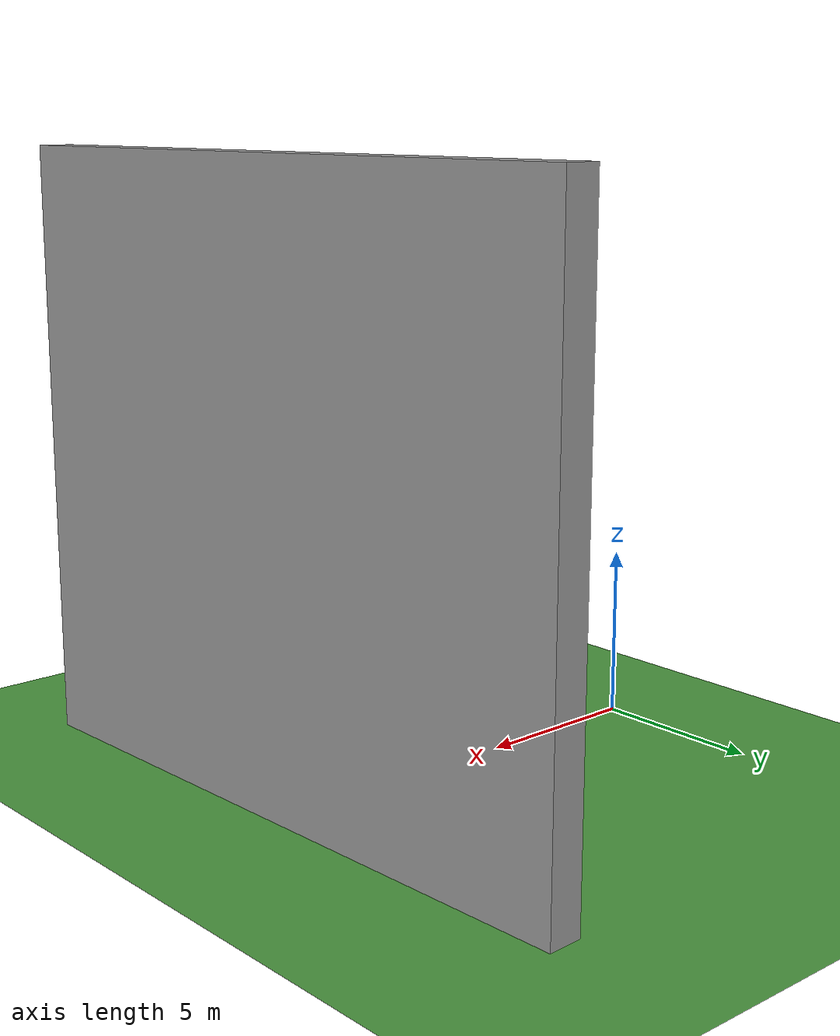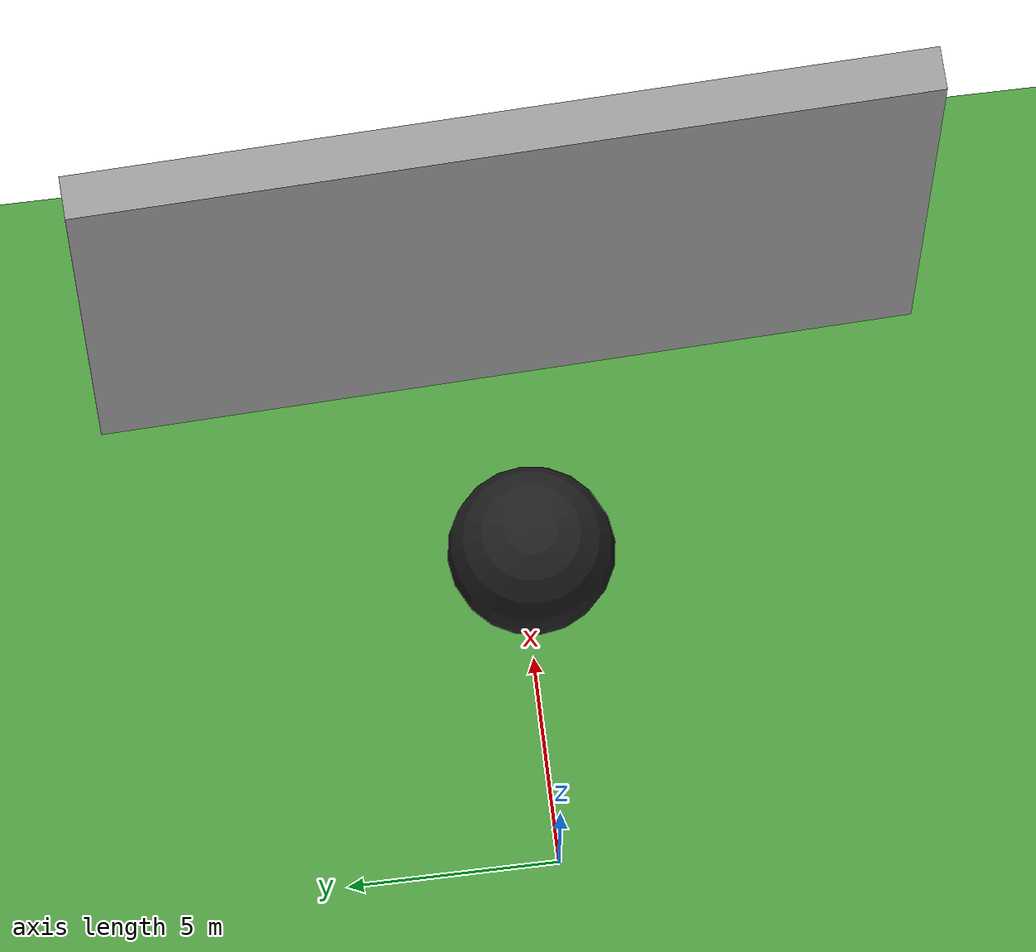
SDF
<sdf version="1.7">
 <world name="cameraSimulation">
  <light name="user_directional_light_0" type="directional">
   <pose>0 0 3 0 -0 0</pose>
   <direction>0 0 -1</direction>
   <attenuation><range>10</range></attenuation>
   <spot><inner_angle>0</inner_angle><outer_angle>0</outer_angle><falloff>0</falloff></spot>
  </light>
  <scene>
   <sky><clouds><speed>48</speed></clouds></sky>
   <ambient>0.4 0.4 0.4 1</ambient>
   <background>0.7 0.7 0.7 1</background>
   <shadows>1</shadows>
  </scene>
  <model name="ground_plane">
   <static>1</static>
   <link name="link">
    <collision name="collision">
     <geometry><plane><normal>0 0 1</normal><size>100 100</size></plane></geometry>
     <surface>
      <contact><collide_bitmask>65535</collide_bitmask></contact>
      <friction><ode><mu>100</mu><mu2>50</mu2></ode></friction>
     </surface>
    </collision>
    <visual name="visual">
     <cast_shadows>0</cast_shadows>
     <geometry><plane><normal>0 0 1</normal><size>100 100</size></plane></geometry>
     <material>
      <script>
       <uri>model://ground_plane/materials/scripts/grass.material</uri>
       <uri>model://ground_plane/materials/textures</uri>
       <name>Template/grass</name>
      </script>
     </material>
    </visual>
   </link>
  </model>
  <model name="box">
   <static>1</static>
   <pose>1 -0.5 2 0 -0 0</pose>
   <link name="link">
    <sensor name="my_sensor" type="camera">
     <camera>
      <horizontal_fov>1.047</horizontal_fov>
      <image><width>320</width><height>240</height></image>
      <clip><near>0.1</near><far>100</far></clip>
     </camera>
     <always_on>1</always_on>
     <update_rate>30</update_rate>
     <visualize>1</visualize>
     <plugin name="camera_controller" filename="libgazebo_ros_camera.so">
      <alwaysOn>1</alwaysOn>
      <updateRate>0.0</updateRate>
      <robotNamespace>box</robotNamespace>
      <cameraName>camera1</cameraName>
      <imageTopicName>image_raw</imageTopicName>
      <cameraInfoTopicName>camera_info</cameraInfoTopicName>
      <frameName>camera_link</frameName>
      <hackBaseline>0.07</hackBaseline>
      <distortionK1>0.0</distortionK1>
      <distortionK2>0.0</distortionK2>
      <distortionK3>0.0</distortionK3>
      <distortionT1>0.0</distortionT1>
      <distortionT2>0.0</distortionT2>
     </plugin>
    </sensor>
   </link>
   <visual name="visual"><geometry><box><size>1.0 1.0 1.0</size></box></geometry></visual>
  </model>
  <model name="box2">
   <static>1</static>
   <pose>1 0.5 2 0 -0 0</pose>
   <link name="link">
    <sensor name="my_sensor2" type="camera">
     <camera>
      <horizontal_fov>1.047</horizontal_fov>
      <image><width>320</width><height>240</height></image>
      <clip><near>0.1</near><far>100</far></clip>
     </camera>
     <always_on>1</always_on>
     <update_rate>30</update_rate>
     <visualize>1</visualize>
     <plugin name="camera_controller" filename="libgazebo_ros_camera.so">
      <alwaysOn>1</alwaysOn>
      <updateRate>0.0</updateRate>
      <robotNamespace>box2</robotNamespace>
      <cameraName>camera2</cameraName>
      <imageTopicName>image_raw</imageTopicName>
      <cameraInfoTopicName>camera_info</cameraInfoTopicName>
      <frameName>camera_link</frameName>
      <hackBaseline>0.07</hackBaseline>
      <distortionK1>0.0</distortionK1>
      <distortionK2>0.0</distortionK2>
      <distortionK3>0.0</distortionK3>
      <distortionT1>0.0</distortionT1>
      <distortionT2>0.0</distortionT2>
     </plugin>
    </sensor>
   </link>
   <visual name="visual"><geometry><box><size>1.0 1.0 1.0</size></box></geometry></visual>
  </model>
  <gravity>0 0 -9.8</gravity>
  <magnetic_field>6e-06 2.3e-05 -4.2e-05</magnetic_field>
  <atmosphere type="adiabatic"/>
  <physics type="ode">
   <max_step_size>0.001</max_step_size>
   <real_time_factor>1</real_time_factor>
   <real_time_update_rate>1000</real_time_update_rate>
  </physics>
  <scene><ambient>0.4 0.4 0.4 1</ambient><background>0.7 0.7 0.7 1</background><shadows>1</shadows></scene>
  <spherical_coordinates>
   <surface_model>EARTH_WGS84</surface_model>
   <latitude_deg>0</latitude_deg>
   <longitude_deg>0</longitude_deg>
   <elevation>0</elevation>
   <heading_deg>0</heading_deg>
  </spherical_coordinates>
  <model name="unit_sphere">
   <pose>7.10112 -0.184805 1.98878 0 -0 0</pose>
   <link name="link">
    <inertial>
     <mass>1</mass>
     <inertia><ixx>0.1</ixx><ixy>0</ixy><ixz>0</ixz><iyy>0.1</iyy><iyz>0</iyz><izz>0.1</izz></inertia>
    </inertial>
    <collision name="collision"><geometry><sphere><radius>1.98878</radius></sphere></geometry></collision>
    <visual name="visual">
     <geometry><sphere><radius>1.98878</radius></sphere></geometry>
     <material>
      <script><name>Gazebo/Black</name><uri>file://media/materials/scripts/gazebo.material</uri></script>
     </material>
    </visual>
   </link>
  </model>
  <model name="unit_box">
   <pose>12.5463 -0.180244 8.57685 -1.4e-05 -0 0.035352</pose>
   <link name="link">
    <inertial>
     <mass>1</mass>
     <inertia>
      <ixx>0.166667</ixx>
      <ixy>0</ixy>
      <ixz>0</ixz>
      <iyy>0.166667</iyy>
      <iyz>0</iyz>
      <izz>0.166667</izz>
     </inertia>
    </inertial>
    <collision name="collision"><geometry><box><size>1 19.6001 17.1539</size></box></geometry></collision>
    <visual name="visual">
     <geometry><box><size>1 19.6001 17.1539</size></box></geometry>
     <material>
      <script><name>Gazebo/Grey</name><uri>file://media/materials/scripts/gazebo.material</uri></script>
     </material>
    </visual>
   </link>
  </model>
 </world>
</sdf>
